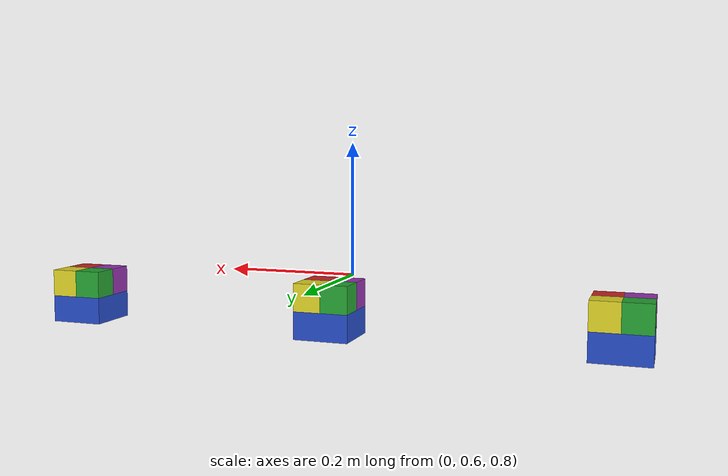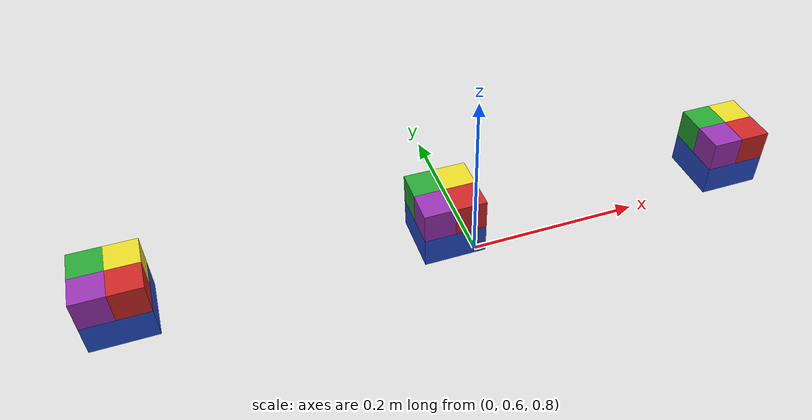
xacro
<?xml version="1.0"?>
<robot xmlns:xacro="http://ros.org/wiki/xacro" name="cube">

  <xacro:macro name="base_block" params="length cube_idx">
    <link name="cube${cube_idx}_link">
      <visual>
        <geometry>
          <box size="${length} ${length} ${length/2}"/>
          <material name="">
            <color rgba="0.9 0.9 0.9 1" />
          </material>
        </geometry>
      </visual>
      <collision>
        <geometry>
          <box size="${length} ${length} ${length/2}"/>
        </geometry>
      </collision>
      <inertial>
        <origin xyz="0 0 0" rpy="0 0 0"/>
        <mass value="0.1"/>
        <inertia
          ixx="1.0" ixy="0.0" ixz="0.0"
          iyy="1.0" iyz="0.0"
          izz="1.0"/>
      </inertial>
    </link>
  </xacro:macro>

  <xacro:macro name="top_cube" params="length suffix cube_idx">
    <link name="childcube_${cube_idx}${suffix}">
      <visual>
        <geometry>
          <box size="${length/2} ${length/2} ${length/2}"/>
          <material name="">
            <color rgba="0.9 0.9 0.9 1" />
          </material>
        </geometry>
      </visual>
      <collision>
        <geometry>
          <box size="${length/2} ${length/2} ${length/2}"/>
        </geometry>
      </collision>
      <inertial>
        <origin xyz="0 0 0" rpy="0 0 0"/>
        <mass value="0.1"/>
        <inertia
          ixx="1.0" ixy="0.0" ixz="0.0"
          iyy="1.0" iyz="0.0"
          izz="1.0"/>
      </inertial>
    </link>
  </xacro:macro>

  <xacro:macro name="colour_cube" params="length x_offset cube_idx">
    <xacro:base_block length="${length}" cube_idx="${cube_idx}" />
    <xacro:top_cube length="${length}" suffix="1" cube_idx="${cube_idx}"/>
    <xacro:top_cube length="${length}" suffix="2" cube_idx="${cube_idx}"/>
    <xacro:top_cube length="${length}" suffix="3" cube_idx="${cube_idx}"/>
    <xacro:top_cube length="${length}" suffix="4" cube_idx="${cube_idx}"/>

    <joint name="world2cube${cube_idx}_joint" type="fixed">
      <parent link="world" />
      <child link = "cube${cube_idx}_link" />
      <origin xyz="${x_offset} 0.7 ${0.7125+0.0127+length/4}" rpy="3.1415926 0.0 3.1415926" />
    </joint>

    <joint name="cube${cube_idx}_1_2_base" type="fixed">
      <parent link="cube${cube_idx}_link" />
      <child link = "childcube_${cube_idx}1" />
      <origin xyz="${-length/4} ${-length/4} ${-length/2}" rpy="0 0 0" />
    </joint>

    <joint name="cube${cube_idx}_2_2_base" type="fixed">
      <parent link="cube${cube_idx}_link" />
      <child link = "childcube_${cube_idx}2" />
      <origin xyz="${length/4} ${-length/4} ${-length/2}" rpy="0 0 0" />
    </joint>

    <joint name="cube${cube_idx}_3_2_base" type="fixed">
      <parent link="cube${cube_idx}_link" />
      <child link = "childcube_${cube_idx}3"/>
      <origin xyz="${-length/4} ${length/4} ${-length/2}" rpy="0 0 0" />
    </joint>

    <joint name="cube${cube_idx}_4_2_base" type="fixed">
      <parent link="cube${cube_idx}_link" />
      <child link = "childcube_${cube_idx}4" />
      <origin xyz="${length/4} ${length/4} ${-length/2}" rpy="0 0 0" />
    </joint>

    <gazebo reference="cube${cube_idx}_link">
      <material>Gazebo/Blue</material>
      <kinematic>1</kinematic>
      <selfCollide>1</selfCollide>
    </gazebo>

    <gazebo reference="childcube_${cube_idx}1">
      <material>Gazebo/Red</material>
      <kinematic>1</kinematic>
      <selfCollide>1</selfCollide>
    </gazebo>

    <gazebo reference="childcube_${cube_idx}2">
      <material>Gazebo/Purple</material>
      <kinematic>1</kinematic>
      <selfCollide>1</selfCollide>
    </gazebo>

    <gazebo reference="childcube_${cube_idx}3">
      <material>Gazebo/Yellow</material>
      <kinematic>1</kinematic>
      <selfCollide>1</selfCollide>
    </gazebo>

    <gazebo reference="childcube_${cube_idx}4">
      <material>Gazebo/Green</material>
      <kinematic>1</kinematic>
      <selfCollide>1</selfCollide>
    </gazebo>

  </xacro:macro>

  <link name="world" />
  <xacro:colour_cube length="0.08" x_offset="0" cube_idx="1" />
  <xacro:colour_cube length="0.08" x_offset="0.4" cube_idx="2" />
  <xacro:colour_cube length="0.08" x_offset="-0.4" cube_idx="3" />

</robot>
